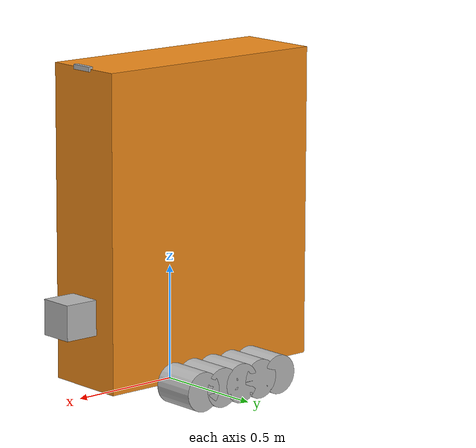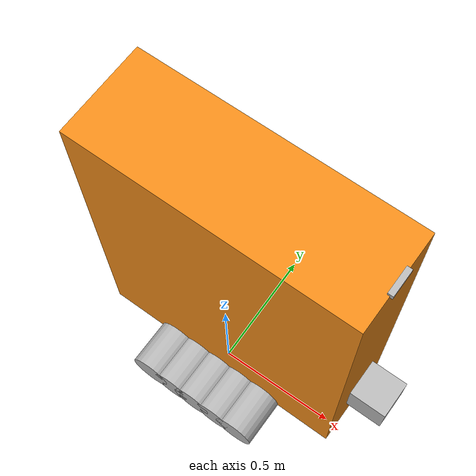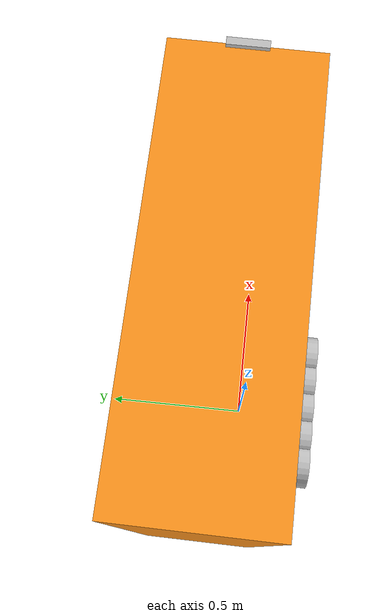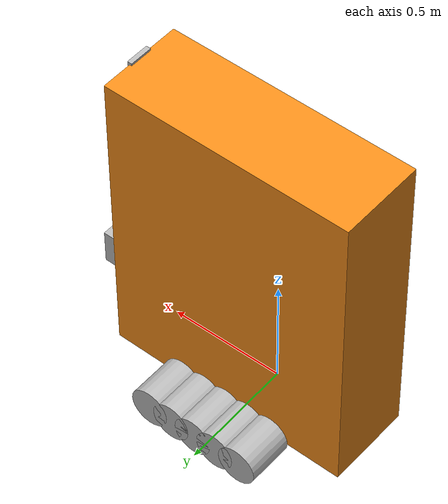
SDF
<sdf version="1.4">
 <world name="default">
  <light name="sun" type="directional">
   <pose>0 0 10 0 -0 0</pose>
   <diffuse>0.8 0.8 0.8 1</diffuse>
   <specular>0.2 0.2 0.2 1</specular>
   <attenuation>
    <range>1000</range>
    <constant>0.9</constant>
    <linear>0.01</linear>
    <quadratic>0.001</quadratic>
   </attenuation>
   <direction>-0.5 0.1 -0.9</direction>
  </light>
  <physics type="ode">
   <max_step_size>0.001</max_step_size>
   <real_time_factor>1</real_time_factor>
   <real_time_update_rate>1000</real_time_update_rate>
   <gravity>0 0 -9.8</gravity>
  </physics>
  <scene><ambient>0.4 0.4 0.4 1</ambient><background>0.7 0.7 0.7 1</background><shadows>1</shadows></scene>
  <spherical_coordinates>
   <surface_model>EARTH_WGS84</surface_model>
   <latitude_deg>0</latitude_deg>
   <longitude_deg>0</longitude_deg>
   <elevation>0</elevation>
   <heading_deg>0</heading_deg>
  </spherical_coordinates>
  <model name="robot_description">
   <link name="base_link">
    <inertial>
     <pose>0.0112157 0 0.00304902 0 -0 0</pose>
     <mass>10.2</mass>
     <inertia>
      <ixx>10.0684</ixx>
      <ixy>0</ixy>
      <ixz>-0.0135074</ixz>
      <iyy>10.1328</iyy>
      <iyz>0</iyz>
      <izz>10.0745</izz>
     </inertia>
    </inertial>
    <collision name="base_link_collision">
     <geometry><box><size>1.068 0.368 1.346</size></box></geometry>
    </collision>
    <collision name="base_link_collision_kinect_link">
     <pose>0.534 0 0.673 0 -0 0</pose>
     <geometry><box><size>0.02 0.1 0.02</size></box></geometry>
    </collision>
    <collision name="base_link_collision_lidar_link">
     <pose>0.61 0 0.008 0 -0 0</pose>
     <geometry><box><size>0.152 0.352 1.182</size></box></geometry>
    </collision>
    <visual name="base_link_visual">
     <geometry><box><size>1.068 0.368 1.346</size></box></geometry>
     <material><script><name>Gazebo/Orange</name><uri>__default__</uri></script></material>
    </visual>
    <visual name="base_link_visual_kinect_link">
     <pose>0.534 0 0.673 0 -0 0</pose>
     <geometry><box><size>0.02 0.1 0.02</size></box></geometry>
    </visual>
    <visual name="base_link_visual_lidar_link">
     <pose>0.61 0 -0.362 0 -0 0</pose>
     <geometry><box><size>0.152 0.152 0.152</size></box></geometry>
    </visual>
    <velocity_decay><linear>0</linear><angular>0</angular></velocity_decay>
    <velocity_decay><linear>0</linear><angular>0</angular></velocity_decay>
    <sensor name="openni_camera_camera" type="depth">
     <always_on>1</always_on>
     <visualize>1</visualize>
     <camera name="__default__">
      <horizontal_fov>2.36</horizontal_fov>
      <image><width>640</width><height>480</height><format>R8G8B8</format></image>
      <depth_camera><output>depths</output></depth_camera>
      <clip><near>0.1</near><far>100</far></clip>
     </camera>
     <plugin name="camera_controller" filename="libgazebo_ros_openni_kinect.so">
      <alwaysOn>true</alwaysOn>
      <updateRate>10.0</updateRate>
      <cameraName>kinect</cameraName>
      <frameName>kinect_depth_frame</frameName>
      <imageTopicName>rgb/image_raw</imageTopicName>
      <depthImageTopicName>depth/image_raw</depthImageTopicName>
      <pointCloudTopicName>depth/points</pointCloudTopicName>
      <cameraInfoTopicName>rgb/camera_info</cameraInfoTopicName>
      <depthImageCameraInfoTopicName>depth/camera_info</depthImageCameraInfoTopicName>
      <pointCloudCutoff>0.4</pointCloudCutoff>
      <hackBaseline>0.07</hackBaseline>
      <distortionK1>0.0</distortionK1>
      <distortionK2>0.0</distortionK2>
      <distortionK3>0.0</distortionK3>
      <distortionT1>0.0</distortionT1>
      <distortionT2>0.0</distortionT2>
      <CxPrime>0.0</CxPrime>
      <Cx>0.0</Cx>
      <Cy>0.0</Cy>
      <focalLength>0.0</focalLength>
      <robotNamespace>/</robotNamespace>
     </plugin>
     <pose>0.534 0 0.673 0 -0 0</pose>
    </sensor>
    <velocity_decay><linear>0</linear><angular>0</angular></velocity_decay>
    <sensor name="sick_lidar_sensor" type="gpu_ray">
     <visualize>1</visualize>
     <update_rate>40</update_rate>
     <ray>
      <scan>
       <horizontal>
        <samples>181</samples>
        <resolution>1</resolution>
        <min_angle>-1.5708</min_angle>
        <max_angle>1.5708</max_angle>
       </horizontal>
      </scan>
      <range><min>0.1</min><max>80</max><resolution>0.01</resolution></range>
      <noise><type>gaussian</type><mean>0</mean><stddev>0.01</stddev></noise>
     </ray>
     <plugin name="gazebo_ros_lidar_controller" filename="libgazebo_ros_gpu_laser.so">
      <topicName>/sensor_msgs/LaserScan</topicName>
      <frameName>lidar_link</frameName>
      <robotNamespace>/</robotNamespace>
     </plugin>
     <pose>0.61 0 -0.362 0 -0 0</pose>
    </sensor>
   </link>
   <link name="left_0_wheel_link">
    <pose>0.211 0.2825 -0.673 0 -0 0</pose>
    <inertial>
     <mass>0.01</mass>
     <inertia>
      <ixx>0.000124118</ixx>
      <ixy>0</ixy>
      <ixz>0</ixz>
      <iyy>0.000152182</iyy>
      <iyz>0</iyz>
      <izz>0.00011764</izz>
     </inertia>
    </inertial>
    <collision name="left_0_wheel_link_collision">
     <pose>0 0 0 -1.5708 0 0</pose>
     <geometry><cylinder><length>0.197</length><radius>0.085</radius></cylinder></geometry>
     <surface>
      <contact><ode><kp>1e+06</kp><kd>100</kd><min_depth>0.001</min_depth></ode></contact>
      <friction><ode><mu>1</mu><mu2>1</mu2></ode></friction>
     </surface>
    </collision>
    <visual name="left_0_wheel_link_visual">
     <pose>0 0 0 -1.5708 0 0</pose>
     <geometry><cylinder><length>0.197</length><radius>0.085</radius></cylinder></geometry>
    </visual>
    <velocity_decay><linear>0</linear><angular>0</angular></velocity_decay>
   </link>
   <joint name="left_0_wheel_joint" type="revolute">
    <child>left_0_wheel_link</child>
    <parent>base_link</parent>
    <axis><xyz>0 1 0</xyz><limit><lower>-1e+16</lower><upper>1e+16</upper></limit></axis>
   </joint>
   <link name="left_1_wheel_link">
    <pose>0 0.2825 -0.673 0 -0 0</pose>
    <inertial>
     <mass>0.01</mass>
     <inertia>
      <ixx>0.000124118</ixx>
      <ixy>0</ixy>
      <ixz>0</ixz>
      <iyy>0.000152182</iyy>
      <iyz>0</iyz>
      <izz>0.00011764</izz>
     </inertia>
    </inertial>
    <collision name="left_1_wheel_link_collision">
     <pose>0 0 0 -1.5708 0 0</pose>
     <geometry><cylinder><length>0.197</length><radius>0.085</radius></cylinder></geometry>
     <surface>
      <contact><ode><kp>1e+06</kp><kd>100</kd><min_depth>0.001</min_depth></ode></contact>
      <friction><ode><mu>1</mu><mu2>1</mu2></ode></friction>
     </surface>
    </collision>
    <visual name="left_1_wheel_link_visual">
     <pose>0 0 0 -1.5708 0 0</pose>
     <geometry><cylinder><length>0.197</length><radius>0.085</radius></cylinder></geometry>
    </visual>
    <velocity_decay><linear>0</linear><angular>0</angular></velocity_decay>
   </link>
   <joint name="left_1_wheel_joint" type="revolute">
    <child>left_1_wheel_link</child>
    <parent>base_link</parent>
    <axis><xyz>0 1 0</xyz><limit><lower>-1e+16</lower><upper>1e+16</upper></limit></axis>
   </joint>
   <link name="left_2_wheel_link">
    <pose>-0.211 0.2825 -0.673 0 -0 0</pose>
    <inertial>
     <mass>0.01</mass>
     <inertia>
      <ixx>0.000124118</ixx>
      <ixy>0</ixy>
      <ixz>0</ixz>
      <iyy>0.000152182</iyy>
      <iyz>0</iyz>
      <izz>0.00011764</izz>
     </inertia>
    </inertial>
    <collision name="left_2_wheel_link_collision">
     <pose>0 0 0 -1.5708 0 0</pose>
     <geometry><cylinder><length>0.197</length><radius>0.085</radius></cylinder></geometry>
     <surface>
      <contact><ode><kp>1e+06</kp><kd>100</kd><min_depth>0.001</min_depth></ode></contact>
      <friction><ode><mu>1</mu><mu2>1</mu2></ode></friction>
     </surface>
    </collision>
    <visual name="left_2_wheel_link_visual">
     <pose>0 0 0 -1.5708 0 0</pose>
     <geometry><cylinder><length>0.197</length><radius>0.085</radius></cylinder></geometry>
    </visual>
    <velocity_decay><linear>0</linear><angular>0</angular></velocity_decay>
   </link>
   <joint name="left_2_wheel_joint" type="revolute">
    <child>left_2_wheel_link</child>
    <parent>base_link</parent>
    <axis><xyz>0 1 0</xyz><limit><lower>-1e+16</lower><upper>1e+16</upper></limit></axis>
   </joint>
   <link name="left_3_wheel_link">
    <pose>0.1055 0.2825 -0.673 0 -0 0</pose>
    <inertial>
     <mass>0.01</mass>
     <inertia>
      <ixx>0.000124118</ixx>
      <ixy>0</ixy>
      <ixz>0</ixz>
      <iyy>0.000152182</iyy>
      <iyz>0</iyz>
      <izz>0.00011764</izz>
     </inertia>
    </inertial>
    <collision name="left_3_wheel_link_collision">
     <pose>0 0 0 -1.5708 0 0</pose>
     <geometry><cylinder><length>0.197</length><radius>0.085</radius></cylinder></geometry>
     <surface>
      <contact><ode><kp>1e+06</kp><kd>100</kd><min_depth>0.001</min_depth></ode></contact>
      <friction><ode><mu>1</mu><mu2>1</mu2></ode></friction>
     </surface>
    </collision>
    <visual name="left_3_wheel_link_visual">
     <pose>0 0 0 -1.5708 0 0</pose>
     <geometry><cylinder><length>0.197</length><radius>0.085</radius></cylinder></geometry>
    </visual>
    <velocity_decay><linear>0</linear><angular>0</angular></velocity_decay>
   </link>
   <joint name="left_3_wheel_joint" type="revolute">
    <child>left_3_wheel_link</child>
    <parent>base_link</parent>
    <axis><xyz>0 1 0</xyz><limit><lower>-1e+16</lower><upper>1e+16</upper></limit></axis>
   </joint>
   <link name="left_4_wheel_link">
    <pose>-0.1055 0.2825 -0.673 0 -0 0</pose>
    <inertial>
     <mass>0.01</mass>
     <inertia>
      <ixx>0.000124118</ixx>
      <ixy>0</ixy>
      <ixz>0</ixz>
      <iyy>0.000152182</iyy>
      <iyz>0</iyz>
      <izz>0.00011764</izz>
     </inertia>
    </inertial>
    <collision name="left_4_wheel_link_collision">
     <pose>0 0 0 -1.5708 0 0</pose>
     <geometry><cylinder><length>0.197</length><radius>0.085</radius></cylinder></geometry>
     <surface>
      <contact><ode><kp>1e+06</kp><kd>100</kd><min_depth>0.001</min_depth></ode></contact>
      <friction><ode><mu>1</mu><mu2>1</mu2></ode></friction>
     </surface>
    </collision>
    <visual name="left_4_wheel_link_visual">
     <pose>0 0 0 -1.5708 0 0</pose>
     <geometry><cylinder><length>0.197</length><radius>0.085</radius></cylinder></geometry>
    </visual>
    <velocity_decay><linear>0</linear><angular>0</angular></velocity_decay>
   </link>
   <joint name="left_4_wheel_joint" type="revolute">
    <child>left_4_wheel_link</child>
    <parent>base_link</parent>
    <axis><xyz>0 1 0</xyz><limit><lower>-1e+16</lower><upper>1e+16</upper></limit></axis>
   </joint>
   <link name="right_0_wheel_link">
    <pose>0.211 -0.2825 -0.673 0 -0 0</pose>
    <inertial>
     <mass>0.01</mass>
     <inertia>
      <ixx>0.000124118</ixx>
      <ixy>0</ixy>
      <ixz>0</ixz>
      <iyy>0.000152182</iyy>
      <iyz>0</iyz>
      <izz>0.00011764</izz>
     </inertia>
    </inertial>
    <collision name="right_0_wheel_link_collision">
     <pose>0 0 0 -1.5708 0 0</pose>
     <geometry><cylinder><length>0.197</length><radius>0.085</radius></cylinder></geometry>
     <surface>
      <contact><ode><kp>1e+06</kp><kd>100</kd><min_depth>0.001</min_depth></ode></contact>
      <friction><ode><mu>1</mu><mu2>1</mu2></ode></friction>
     </surface>
    </collision>
    <visual name="right_0_wheel_link_visual">
     <pose>0 0 0 -1.5708 0 0</pose>
     <geometry><cylinder><length>0.197</length><radius>0.085</radius></cylinder></geometry>
    </visual>
    <velocity_decay><linear>0</linear><angular>0</angular></velocity_decay>
   </link>
   <joint name="right_0_wheel_joint" type="revolute">
    <child>right_0_wheel_link</child>
    <parent>base_link</parent>
    <axis><xyz>0 1 0</xyz><limit><lower>-1e+16</lower><upper>1e+16</upper></limit></axis>
   </joint>
   <link name="right_1_wheel_link">
    <pose>0 -0.2825 -0.673 0 -0 0</pose>
    <inertial>
     <mass>0.01</mass>
     <inertia>
      <ixx>0.000124118</ixx>
      <ixy>0</ixy>
      <ixz>0</ixz>
      <iyy>0.000152182</iyy>
      <iyz>0</iyz>
      <izz>0.00011764</izz>
     </inertia>
    </inertial>
    <collision name="right_1_wheel_link_collision">
     <pose>0 0 0 -1.5708 0 0</pose>
     <geometry><cylinder><length>0.197</length><radius>0.085</radius></cylinder></geometry>
     <surface>
      <contact><ode><kp>1e+06</kp><kd>100</kd><min_depth>0.001</min_depth></ode></contact>
      <friction><ode><mu>1</mu><mu2>1</mu2></ode></friction>
     </surface>
    </collision>
    <visual name="right_1_wheel_link_visual">
     <pose>0 0 0 -1.5708 0 0</pose>
     <geometry><cylinder><length>0.197</length><radius>0.085</radius></cylinder></geometry>
    </visual>
    <velocity_decay><linear>0</linear><angular>0</angular></velocity_decay>
   </link>
   <joint name="right_1_wheel_joint" type="revolute">
    <child>right_1_wheel_link</child>
    <parent>base_link</parent>
    <axis><xyz>0 1 0</xyz><limit><lower>-1e+16</lower><upper>1e+16</upper></limit></axis>
   </joint>
   <link name="right_2_wheel_link">
    <pose>-0.211 -0.2825 -0.673 0 -0 0</pose>
    <inertial>
     <mass>0.01</mass>
     <inertia>
      <ixx>0.000124118</ixx>
      <ixy>0</ixy>
      <ixz>0</ixz>
      <iyy>0.000152182</iyy>
      <iyz>0</iyz>
      <izz>0.00011764</izz>
     </inertia>
    </inertial>
    <collision name="right_2_wheel_link_collision">
     <pose>0 0 0 -1.5708 0 0</pose>
     <geometry><cylinder><length>0.197</length><radius>0.085</radius></cylinder></geometry>
     <surface>
      <contact><ode><kp>1e+06</kp><kd>100</kd><min_depth>0.001</min_depth></ode></contact>
      <friction><ode><mu>1</mu><mu2>1</mu2></ode></friction>
     </surface>
    </collision>
    <visual name="right_2_wheel_link_visual">
     <pose>0 0 0 -1.5708 0 0</pose>
     <geometry><cylinder><length>0.197</length><radius>0.085</radius></cylinder></geometry>
    </visual>
    <velocity_decay><linear>0</linear><angular>0</angular></velocity_decay>
   </link>
   <joint name="right_2_wheel_joint" type="revolute">
    <child>right_2_wheel_link</child>
    <parent>base_link</parent>
    <axis><xyz>0 1 0</xyz><limit><lower>-1e+16</lower><upper>1e+16</upper></limit></axis>
   </joint>
   <link name="right_3_wheel_link">
    <pose>-0.1055 -0.2825 -0.673 0 -0 0</pose>
    <inertial>
     <mass>0.01</mass>
     <inertia>
      <ixx>0.000124118</ixx>
      <ixy>0</ixy>
      <ixz>0</ixz>
      <iyy>0.000152182</iyy>
      <iyz>0</iyz>
      <izz>0.00011764</izz>
     </inertia>
    </inertial>
    <collision name="right_3_wheel_link_collision">
     <pose>0 0 0 -1.5708 0 0</pose>
     <geometry><cylinder><length>0.197</length><radius>0.085</radius></cylinder></geometry>
     <surface>
      <contact><ode><kp>1e+06</kp><kd>100</kd><min_depth>0.001</min_depth></ode></contact>
      <friction><ode><mu>1</mu><mu2>1</mu2></ode></friction>
     </surface>
    </collision>
    <visual name="right_3_wheel_link_visual">
     <pose>0 0 0 -1.5708 0 0</pose>
     <geometry><cylinder><length>0.197</length><radius>0.085</radius></cylinder></geometry>
    </visual>
    <velocity_decay><linear>0</linear><angular>0</angular></velocity_decay>
   </link>
   <joint name="right_3_wheel_joint" type="revolute">
    <child>right_3_wheel_link</child>
    <parent>base_link</parent>
    <axis><xyz>0 1 0</xyz><limit><lower>-1e+16</lower><upper>1e+16</upper></limit></axis>
   </joint>
   <link name="right_4_wheel_link">
    <pose>0.1055 -0.2825 -0.673 0 -0 0</pose>
    <inertial>
     <mass>0.01</mass>
     <inertia>
      <ixx>0.000124118</ixx>
      <ixy>0</ixy>
      <ixz>0</ixz>
      <iyy>0.000152182</iyy>
      <iyz>0</iyz>
      <izz>0.00011764</izz>
     </inertia>
    </inertial>
    <collision name="right_4_wheel_link_collision">
     <pose>0 0 0 -1.5708 0 0</pose>
     <geometry><cylinder><length>0.197</length><radius>0.085</radius></cylinder></geometry>
     <surface>
      <contact><ode><kp>1e+06</kp><kd>100</kd><min_depth>0.001</min_depth></ode></contact>
      <friction><ode><mu>1</mu><mu2>1</mu2></ode></friction>
     </surface>
    </collision>
    <visual name="right_4_wheel_link_visual">
     <pose>0 0 0 -1.5708 0 0</pose>
     <geometry><cylinder><length>0.197</length><radius>0.085</radius></cylinder></geometry>
    </visual>
    <velocity_decay><linear>0</linear><angular>0</angular></velocity_decay>
   </link>
   <joint name="right_4_wheel_joint" type="revolute">
    <child>right_4_wheel_link</child>
    <parent>base_link</parent>
    <axis><xyz>0 1 0</xyz><limit><lower>-1e+16</lower><upper>1e+16</upper></limit></axis>
   </joint>
   <static>0</static>
   <plugin name="diffdrive_plugin_multiwheel" filename="libdiffdrive_plugin_multi_wheel.so">
    <alwaysOn>true</alwaysOn>
    <updateRate>100.0</updateRate>
    <leftJoints>left_0_wheel_joint left_1_wheel_joint left_2_wheel_joint left_3_wheel_joint left_4_wheel_joint</leftJoints>
    <rightJoints>right_0_wheel_joint right_1_wheel_joint right_2_wheel_joint right_3_wheel_joint right_4_wheel_joint</rightJoints>
    <wheelSeparation>0.565</wheelSeparation>
    <wheelDiameter>0.17</wheelDiameter>
    <torque>50000</torque>
    <robotNamespace>/</robotNamespace>
    <robotBaseFrame>base_link</robotBaseFrame>
    <topicName>cmd_vel</topicName>
    <commandTopic>/cmd_vel</commandTopic>
    <odometryTopic>odom</odometryTopic>
    <odometryFrame>odom</odometryFrame>
    <broadcastTF>1</broadcastTF>
    <publishWheelTF>true</publishWheelTF>
    <publishWheelJointState>true</publishWheelJointState>
    <publishOdometryTf>1</publishOdometryTf>
    <publishOdometryMsg>1</publishOdometryMsg>
   </plugin>
   <plugin name="p3d_base_controller" filename="libgazebo_ros_p3d.so">
    <alwaysOn>true</alwaysOn>
    <updateRate>50.0</updateRate>
    <bodyName>base_link</bodyName>
    <topicName>ground_truth/state</topicName>
    <gaussianNoise>0.01</gaussianNoise>
    <frameName>world</frameName>
    <xyzOffsets>0 0 0</xyzOffsets>
    <rpyOffsets>0 0 0</rpyOffsets>
    <robotNamespace>/</robotNamespace>
   </plugin>
   <plugin name="imu_controller" filename="libhector_gazebo_ros_imu.so">
    <alwaysOn>true</alwaysOn>
    <updateRate>50.0</updateRate>
    <bodyName>base_link</bodyName>
    <topicName>imu_quat</topicName>
    <accelDrift>0.0 0.0 0.0</accelDrift>
    <accelGaussianNoise>0.1 0.1 0.1</accelGaussianNoise>
    <rateDrift>0.0 0.0 0.0</rateDrift>
    <rateGaussianNoise>0.05 0.05 0.05</rateGaussianNoise>
    <headingDrift>0.0</headingDrift>
    <headingGaussianNoise>0.05</headingGaussianNoise>
    <robotNamespace>/</robotNamespace>
   </plugin>
   <pose>0.016304 0.10467 0.756963 -4e-06 3.1e-05 -0.013148</pose>
  </model>
 </world>
</sdf>
